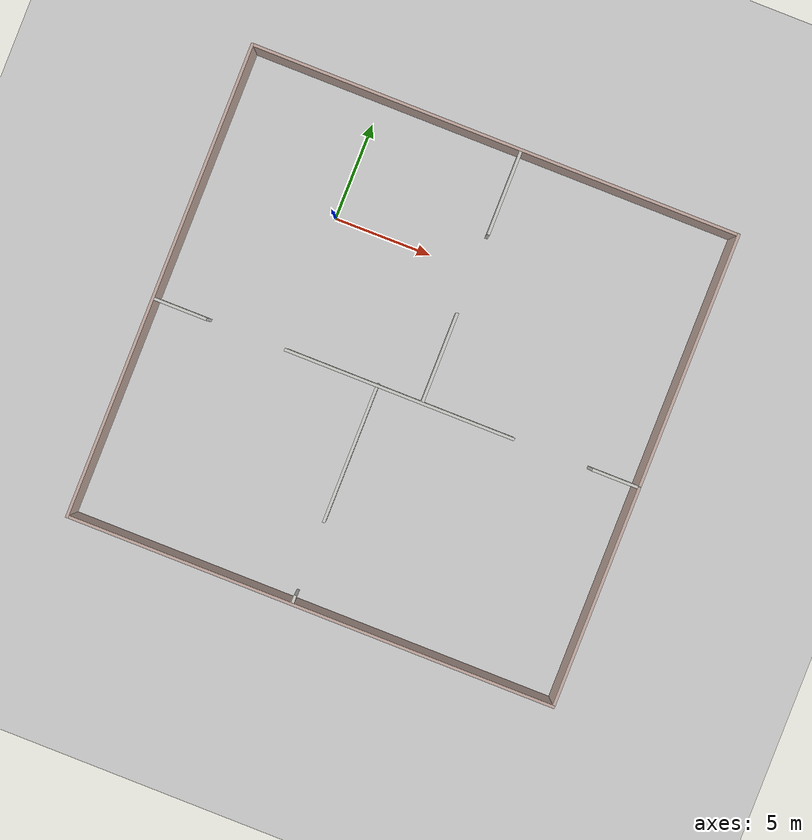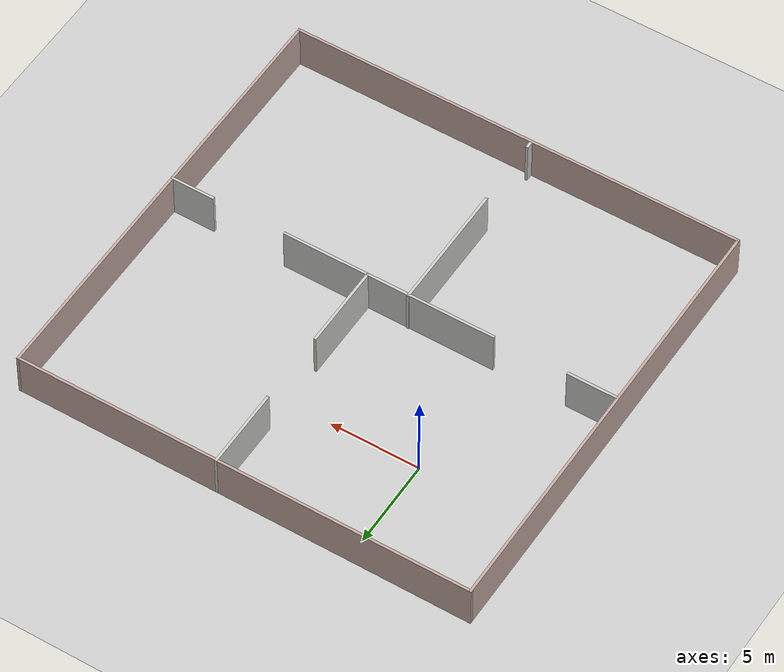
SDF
<sdf version="1.7">
 <world name="default">
  <light name="sun" type="directional">
   <pose>0 0 10 0 -0 0</pose>
   <diffuse>0.8 0.8 0.8 1</diffuse>
   <specular>0.2 0.2 0.2 1</specular>
   <attenuation>
    <range>1000</range>
    <constant>0.9</constant>
    <linear>0.01</linear>
    <quadratic>0.001</quadratic>
   </attenuation>
   <direction>-0.5 0.1 -0.9</direction>
   <spot><inner_angle>0</inner_angle><outer_angle>0</outer_angle><falloff>0</falloff></spot>
  </light>
  <model name="ground_plane">
   <static>1</static>
   <link name="link">
    <collision name="collision">
     <geometry><plane><normal>0 0 1</normal><size>100 100</size></plane></geometry>
     <surface><friction><ode><mu>100</mu><mu2>50</mu2></ode></friction></surface>
    </collision>
    <visual name="visual">
     <cast_shadows>0</cast_shadows>
     <geometry><plane><normal>0 0 1</normal><size>100 100</size></plane></geometry>
     <material>
      <script><uri>file://media/materials/scripts/gazebo.material</uri><name>Gazebo/Grey</name></script>
     </material>
    </visual>
   </link>
  </model>
  <gravity>0 0 -9.8</gravity>
  <magnetic_field>6e-06 2.3e-05 -4.2e-05</magnetic_field>
  <atmosphere type="adiabatic"/>
  <physics type="ode">
   <max_step_size>0.001</max_step_size>
   <real_time_factor>1</real_time_factor>
   <real_time_update_rate>1000</real_time_update_rate>
  </physics>
  <scene><ambient>0.4 0.4 0.4 1</ambient><background>0.7 0.7 0.7 1</background><shadows>1</shadows></scene>
  <audio><device>default</device></audio>
  <spherical_coordinates>
   <surface_model>EARTH_WGS84</surface_model>
   <latitude_deg>0</latitude_deg>
   <longitude_deg>0</longitude_deg>
   <elevation>0</elevation>
   <heading_deg>0</heading_deg>
  </spherical_coordinates>
  <model name="standard_sgm_world_resized.world">
   <pose>5.96413 -6.06953 0 0 -0 0</pose>
   <link name="Wall_10">
    <collision name="Wall_10_Collision">
     <geometry><box><size>2.75 0.15 2.5</size></box></geometry>
     <pose>0 0 1.25 0 -0 0</pose>
    </collision>
    <visual name="Wall_10_Visual">
     <pose>0 0 1.25 0 -0 0</pose>
     <geometry><box><size>2.75 0.15 2.5</size></box></geometry>
     <material>
      <script><uri>file://media/materials/scripts/gazebo.material</uri><name>Gazebo/CeilingTiled</name></script>
      <ambient>0.921569 0.807843 0.615686 1</ambient>
     </material>
     <meta><layer>0</layer></meta>
    </visual>
    <pose>-11.2464 -0.929561 0 0 -0 0</pose>
   </link>
   <link name="Wall_13">
    <collision name="Wall_13_Collision">
     <geometry><box><size>2.5 0.15 2.5</size></box></geometry>
     <pose>0 0 1.25 0 -0 0</pose>
    </collision>
    <visual name="Wall_13_Visual">
     <pose>0 0 1.25 0 -0 0</pose>
     <geometry><box><size>2.5 0.15 2.5</size></box></geometry>
     <material>
      <script><uri>file://media/materials/scripts/gazebo.material</uri><name>Gazebo/CeilingTiled</name></script>
      <ambient>0.921569 0.807843 0.615686 1</ambient>
     </material>
     <meta><layer>0</layer></meta>
    </visual>
    <pose>11.4825 -0.889397 0 0 -0 3.14159</pose>
   </link>
   <link name="Wall_17">
    <collision name="Wall_17_Collision">
     <geometry><box><size>12 0.15 2.5</size></box></geometry>
     <pose>0 0 1.25 0 -0 0</pose>
    </collision>
    <visual name="Wall_17_Visual">
     <pose>0 0 1.25 0 -0 0</pose>
     <geometry><box><size>12 0.15 2.5</size></box></geometry>
     <material>
      <script><uri>file://media/materials/scripts/gazebo.material</uri><name>Gazebo/CeilingTiled</name></script>
      <ambient>0.921569 0.807843 0.615686 1</ambient>
     </material>
     <meta><layer>0</layer></meta>
    </visual>
    <pose>0.181317 -0.912527 0 0 -0 0</pose>
   </link>
   <link name="Wall_19">
    <collision name="Wall_19_Collision">
     <geometry><box><size>7.25 0.15 2.5</size></box></geometry>
     <pose>0 0 1.25 0 -0 0</pose>
    </collision>
    <visual name="Wall_19_Visual">
     <pose>0 0 1.25 0 -0 0</pose>
     <geometry><box><size>7.25 0.15 2.5</size></box></geometry>
     <material>
      <script><uri>file://media/materials/scripts/gazebo.material</uri><name>Gazebo/CeilingTiled</name></script>
      <ambient>0.921569 0.807843 0.615686 1</ambient>
     </material>
     <meta><layer>0</layer></meta>
    </visual>
    <pose>-0.98157 -4.42095 0 0 -0 -1.5708</pose>
   </link>
   <link name="Wall_22">
    <collision name="Wall_22_Collision">
     <geometry><box><size>0.5 0.15 2.5</size></box></geometry>
     <pose>0 0 1.25 0 -0 0</pose>
    </collision>
    <visual name="Wall_22_Visual">
     <pose>0 0 1.25 0 -0 0</pose>
     <geometry><box><size>0.5 0.15 2.5</size></box></geometry>
     <material>
      <script><uri>file://media/materials/scripts/gazebo.material</uri><name>Gazebo/CeilingTiled</name></script>
      <ambient>0.921569 0.807843 0.615686 1</ambient>
     </material>
     <meta><layer>0</layer></meta>
    </visual>
    <pose>-0.957248 -12.076 0 0 -0 -1.5708</pose>
   </link>
   <link name="Wall_26">
    <collision name="Wall_26_Collision">
     <geometry><box><size>4.75 0.15 2.5</size></box></geometry>
     <pose>0 0 1.25 0 -0 0</pose>
    </collision>
    <visual name="Wall_26_Visual">
     <pose>0 0 1.25 0 -0 0</pose>
     <geometry><box><size>4.75 0.15 2.5</size></box></geometry>
     <material>
      <script><uri>file://media/materials/scripts/gazebo.material</uri><name>Gazebo/CeilingTiled</name></script>
      <ambient>0.921569 0.807843 0.615686 1</ambient>
     </material>
     <meta><layer>0</layer></meta>
    </visual>
    <pose>1.35907 1.42556 0 0 -0 -1.5708</pose>
   </link>
   <link name="Wall_3">
    <collision name="Wall_3_Collision">
     <geometry><box><size>24.75 0.15 2.5</size></box></geometry>
     <pose>0 0 1.25 0 -0 0</pose>
    </collision>
    <visual name="Wall_3_Visual">
     <pose>0 0 1.25 0 -0 0</pose>
     <geometry><box><size>24.75 0.15 2.5</size></box></geometry>
     <material>
      <script><uri>file://media/materials/scripts/gazebo.material</uri><name>Gazebo/Grey</name></script>
      <ambient>0.760784 0.662745 0.627451 1</ambient>
     </material>
     <meta><layer>0</layer></meta>
    </visual>
    <pose>-12.675 -0.000587 0 0 -0 -1.5708</pose>
   </link>
   <link name="Wall_4">
    <collision name="Wall_4_Collision">
     <geometry><box><size>25.5 0.15 2.5</size></box></geometry>
     <pose>0 0 1.25 0 -0 0</pose>
    </collision>
    <visual name="Wall_4_Visual">
     <pose>0 0 1.25 0 -0 0</pose>
     <geometry><box><size>25.5 0.15 2.5</size></box></geometry>
     <material>
      <script><uri>file://media/materials/scripts/gazebo.material</uri><name>Gazebo/Grey</name></script>
      <ambient>0.760784 0.662745 0.627451 1</ambient>
     </material>
     <meta><layer>0</layer></meta>
    </visual>
    <pose>0 -12.3006 0 0 -0 0</pose>
   </link>
   <link name="Wall_5">
    <collision name="Wall_5_Collision">
     <geometry><box><size>24.75 0.15 2.5</size></box></geometry>
     <pose>0 0 1.25 0 -0 0</pose>
    </collision>
    <visual name="Wall_5_Visual">
     <pose>0 0 1.25 0 -0 0</pose>
     <geometry><box><size>24.75 0.15 2.5</size></box></geometry>
     <material>
      <script><uri>file://media/materials/scripts/gazebo.material</uri><name>Gazebo/Grey</name></script>
      <ambient>0.760784 0.662745 0.627451 1</ambient>
     </material>
     <meta><layer>0</layer></meta>
    </visual>
    <pose>12.675 -0.000587 0 0 -0 1.5708</pose>
   </link>
   <link name="Wall_6">
    <collision name="Wall_6_Collision">
     <geometry><box><size>25.5 0.15 2.5</size></box></geometry>
     <pose>0 0 1.25 0 -0 0</pose>
    </collision>
    <visual name="Wall_6_Visual">
     <pose>0 0 1.25 0 -0 0</pose>
     <geometry><box><size>25.5 0.15 2.5</size></box></geometry>
     <material>
      <script><uri>file://media/materials/scripts/gazebo.material</uri><name>Gazebo/Grey</name></script>
      <ambient>0.760784 0.662745 0.627451 1</ambient>
     </material>
     <meta><layer>0</layer></meta>
    </visual>
    <pose>0 12.2994 0 0 -0 3.14159</pose>
   </link>
   <link name="Wall_8">
    <collision name="Wall_8_Collision">
     <geometry><box><size>4.5 0.15 2.5</size></box></geometry>
     <pose>0 0 1.25 0 -0 0</pose>
    </collision>
    <visual name="Wall_8_Visual">
     <pose>0 0 1.25 0 -0 0</pose>
     <geometry><box><size>4.5 0.15 2.5</size></box></geometry>
     <material>
      <script><uri>file://media/materials/scripts/gazebo.material</uri><name>Gazebo/CeilingTiled</name></script>
      <ambient>0.921569 0.807843 0.615686 1</ambient>
     </material>
     <meta><layer>0</layer></meta>
    </visual>
    <pose>1.36309 10.1256 0 0 -0 -1.5708</pose>
   </link>
   <static>1</static>
  </model>
 </world>
</sdf>
